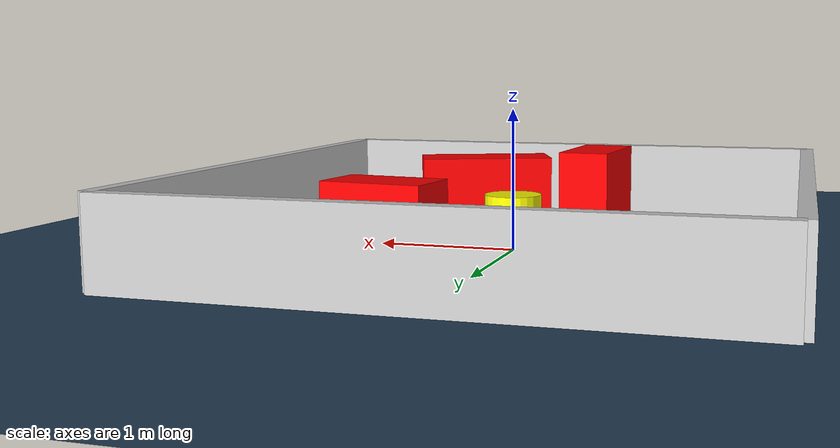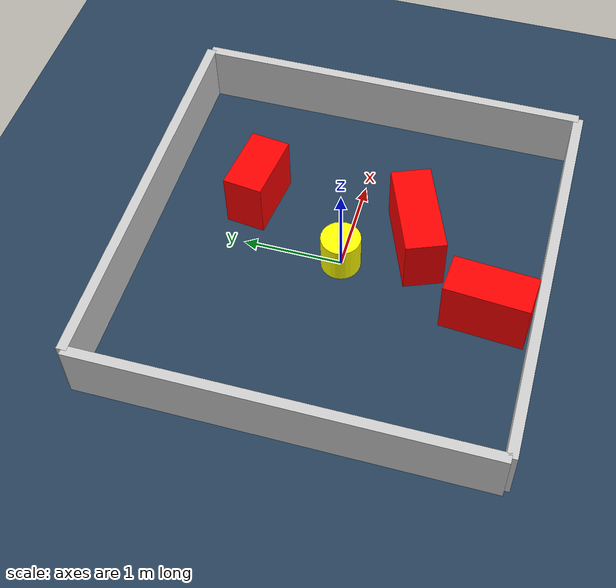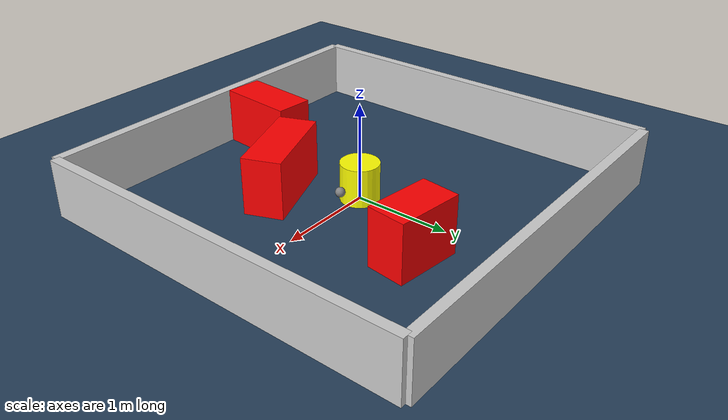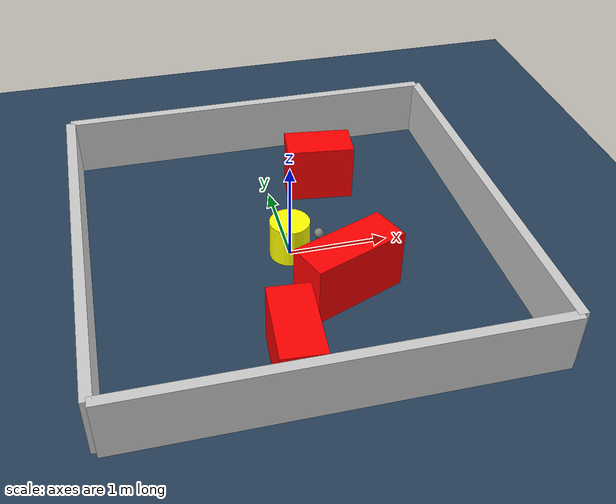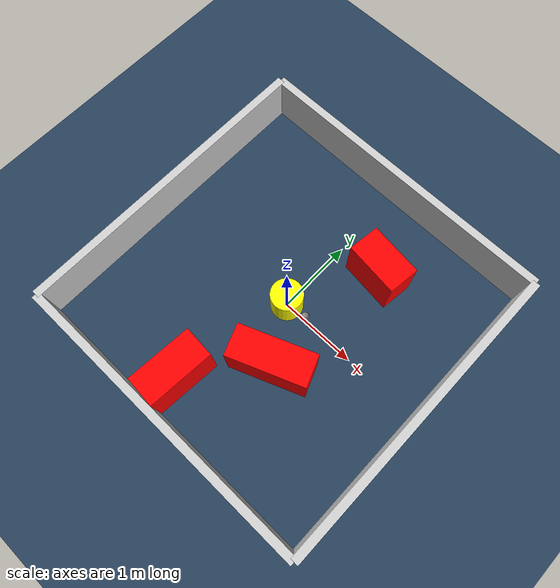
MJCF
<?xml version="1.0" ?>
<mujoco model="generated_environment">
  <option timestep="0.01" integrator="RK4" cone="elliptic"/>
  <default>
    <geom density="1"/>
  </default>
  <asset>
    <texture builtin="gradient" height="3072" rgb1="0.3 0.5 0.7" rgb2="0 0 0" type="skybox" width="512"/>
    <texture builtin="checker" height="300" mark="edge" markrgb="0.8 0.8 0.8" name="groundplane" rgb1="0.2 0.3 0.4" rgb2="0.1 0.2 0.3" type="2d" width="300"/>
    <material name="groundplane" reflectance="0.2" texrepeat="5 5" texture="groundplane" texuniform="true"/>
    <material name="robot" rgba="0.0 1.0 0.0 1"/>
  </asset>
  <worldbody>
    <light dir="0 0 -1" directional="true" pos="0 0 1.5"/>
    <geom condim="4" friction="1.0 0.005 0.001" material="groundplane" name="floor" size="0 0 0.05" type="plane"/>
    <body name="walls">
      <geom name="wall_1" condim="4" pos="-2.0 0.0 0.3" rgba="0.800000011920929 0.800000011920929 0.800000011920929 1.0" size="0.05 2.0 0.3" type="box"/>
      <geom name="wall_2" condim="4" pos="2.0 0.0 0.3" rgba="0.800000011920929 0.800000011920929 0.800000011920929 1.0" size="0.05 2.0 0.3" type="box"/>
      <geom name="wall_3" condim="4" pos="0.0 -2.0 0.3" rgba="0.800000011920929 0.800000011920929 0.800000011920929 1.0" size="2.0 0.05 0.3" type="box"/>
      <geom name="wall_4" condim="4" pos="0.0 2.0 0.3" rgba="0.800000011920929 0.800000011920929 0.800000011920929 1.0" size="2.0 0.05 0.3" type="box"/>
    </body>
    <body name="robot">
      <joint name="joint_x" type="slide" pos="0 0 0" axis="1 0 0"/>
      <joint name="joint_y" type="slide" pos="0 0 0" axis="0 1 0"/>
      <geom name="robot" type="sphere" pos="0.3 0.0 0.2" size="0.05" mass="5." friction="1.0 0.005 0.0001" condim="4" rgba="0.5 0.5 0.5 1.0"/>
      <site name="sensor_ball"/>
    </body>
    <body name="obstacle_movable_1">
      <geom name="obstacle_movable_1" condim="4" pos="0.0 0.0 0.2" euler="0 0 0.0" friction="1.0 0.005 0.001" rgba="1.0 1.0 0.0 1.0" size="0.2 0.2 0.0" type="cylinder" mass="0.1"/>
      <joint type="free"/>
    </body>
    <body name="obstacle_2_static">
      <geom name="obstacle_2_static" condim="4" pos="0.4037008031389884 -0.6679825363375644 0.3" euler="0 0 21.86111526227014" friction="1.0 0.005 0.001" rgba="1 0 0 1" size="0.48563180985016835 0.2 0.3" type="box"/>
    </body>
    <body name="obstacle_3_static">
      <geom name="obstacle_3_static" condim="4" pos="-0.30481072905324913 -1.5181494550718848 0.3" euler="0 0 85.81797586960853" friction="1.0 0.005 0.001" rgba="1 0 0 1" size="0.4158319008724637 0.2 0.3" type="box"/>
    </body>
    <body name="obstacle_4_static">
      <geom name="obstacle_4_static" condim="4" pos="0.557784101600445 1.0257171776016325 0.3" euler="0 0 353.0874470726679" friction="1.0 0.005 0.001" rgba="1 0 0 1" size="0.3467257355594155 0.2 0.3" type="box"/>
    </body>
  </worldbody>
  <actuator>
    <motor name="actuator_x" joint="joint_x" gear="1" ctrlrange="-1 1"/>
    <motor name="actuator_y" joint="joint_y" gear="1" ctrlrange="-1 1"/>
  </actuator>
</mujoco>
